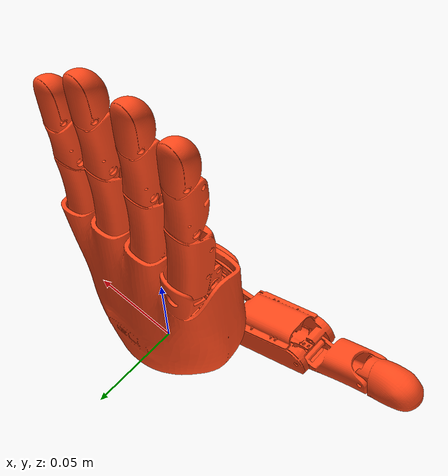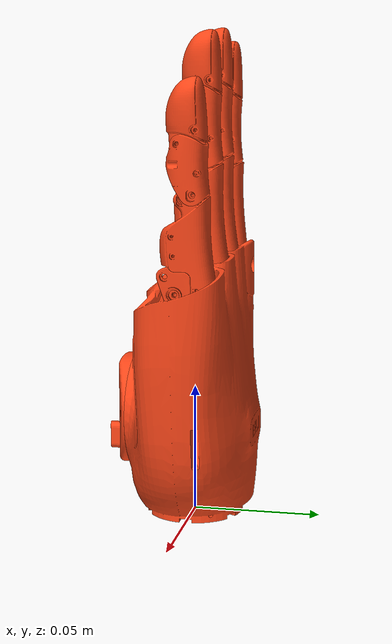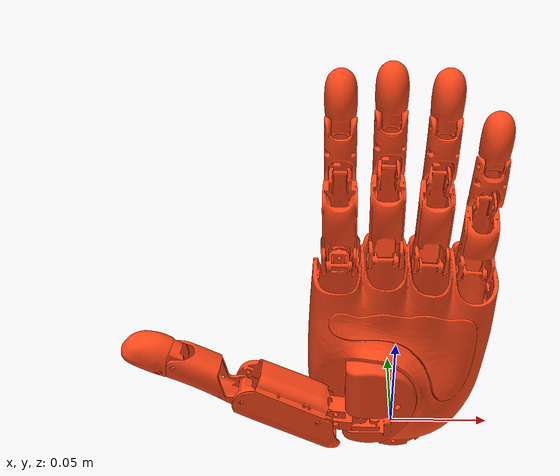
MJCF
<mujoco model="ghand5-left">
  <default>
    <default class="robot">
      <default class="motor">
        <joint />
        <motor />
      </default>
      <default class="visual">
        <geom material="visualgeom" contype="0" conaffinity="0" group="2" />
      </default>
      <default class="collision">
        <geom material="collision_material" condim="3" contype="0" conaffinity="1" priority="1" group="1" solref="0.005 1" solimp="0.99 0.999 1e-05" friction="1 0.01 0.01" />
      </default>
    </default>
  </default>

  <compiler angle="radian" />

  <asset>
    <material name="urdf_material" rgba="0.792156862745098 0.819607843137255 0.933333333333333 1" />
    <material name="default_material" rgba="0.7 0.7 0.7 1" />
    <material name="collision_material" rgba="1.0 0.28 0.1 0.9" />
    <mesh name="base_link.STL" file="ghand5_system/meshes/hands/visual/left/base_link.STL" />
    <mesh name="LF_MCP_link.STL" file="ghand5_system/meshes/hands/visual/left/LF_MCP_link.STL" />
    <mesh name="LF_PIP_link.STL" file="ghand5_system/meshes/hands/visual/left/LF_PIP_link.STL" />
    <mesh name="LF_DIP_link.STL" file="ghand5_system/meshes/hands/visual/left/LF_DIP_link.STL" />
    <mesh name="RF_MCP_link.STL" file="ghand5_system/meshes/hands/visual/left/RF_MCP_link.STL" />
    <mesh name="RF_PIP_link.STL" file="ghand5_system/meshes/hands/visual/left/RF_PIP_link.STL" />
    <mesh name="RF_DIP_link.STL" file="ghand5_system/meshes/hands/visual/left/RF_DIP_link.STL" />
    <mesh name="MF_MCP_link.STL" file="ghand5_system/meshes/hands/visual/left/MF_MCP_link.STL" />
    <mesh name="MF_PIP_link.STL" file="ghand5_system/meshes/hands/visual/left/MF_PIP_link.STL" />
    <mesh name="MF_DIP_link.STL" file="ghand5_system/meshes/hands/visual/left/MF_DIP_link.STL" />
    <mesh name="FF_MCP_AA_link.STL" file="ghand5_system/meshes/hands/visual/left/FF_MCP_AA_link.STL" />
    <mesh name="FF_MCP_link.STL" file="ghand5_system/meshes/hands/visual/left/FF_MCP_link.STL" />
    <mesh name="FF_PIP_link.STL" file="ghand5_system/meshes/hands/visual/left/FF_PIP_link.STL" />
    <mesh name="FF_DIP_link.STL" file="ghand5_system/meshes/hands/visual/left/FF_DIP_link.STL" />
    <mesh name="Thumb_TMC_PS_link.STL" file="ghand5_system/meshes/hands/visual/left/Thumb_TMC_PS_link.STL" />
    <mesh name="Thumb_TMC_AA_link.STL" file="ghand5_system/meshes/hands/visual/left/Thumb_TMC_AA_link.STL" />
    <mesh name="Thumb_TMC_FE_link.STL" file="ghand5_system/meshes/hands/visual/left/Thumb_TMC_FE_link.STL" />
    <mesh name="Thumb_MCP_link.STL" file="ghand5_system/meshes/hands/visual/left/Thumb_MCP_link.STL" />
    <mesh name="Thumb_IP_link.STL" file="ghand5_system/meshes/hands/visual/left/Thumb_IP_link.STL" />
  </asset>

  <worldbody>
    <body name="base_link" pos="0.00000000 0.00000000 0.00000000" quat="1 0 0 0" childclass="robot">
      <freejoint name="floating_base" />
      <geom name="base_link_collision" pos="0 0 0" quat="1.0 0.0 0.0 0.0" type="mesh" mesh="base_link.STL" class="collision" />
      <geom name="base_link_visual" pos="0 0 0" quat="1.0 0.0 0.0 0.0" material="urdf_material" type="mesh" mesh="base_link.STL" class="visual" />
      <body name="LF_MCP_link" pos="0.0341852210660914 0.00105270446463312 0.0926707802401366" quat="0.6821582688208421 -4.763367598241154e-14 0.7312045515991757 5.122264457649408e-14">
        <joint name="LF_MCP" type="hinge" ref="0.0" class="motor" range="0 1.5707963267949" axis="0 0 1" />
        <inertial pos="-0.0148711772185361 0.00503210080095334 -3.90397370621486E-05" quat="1.0 0.0 0.0 0.0" mass="0.0264425466158207" diaginertia="1.12664170958369e-06 3.74474011460812e-06 3.38696740766995e-06" />
        <geom name="LF_MCP_link_collision" pos="0 0 0" quat="1.0 0.0 0.0 0.0" type="mesh" mesh="LF_MCP_link.STL" class="collision" />
        <geom name="LF_MCP_link_visual" pos="0 0 0" quat="1.0 0.0 0.0 0.0" material="urdf_material" type="mesh" mesh="LF_MCP_link.STL" class="visual" />
        <body name="LF_PIP_link" pos="-0.0358288970800678 0.006967083967316 0" quat="1.0 0.0 0.0 0.0">
          <joint name="LF_PIP" type="hinge" ref="0.0" class="motor" range="0 1.2915436464758" axis="0 0 1" />
          <inertial pos="-0.00970679039691405 -0.0014891837266436 -3.24879588827764E-05" quat="1.0 0.0 0.0 0.0" mass="0.0106101968315524" diaginertia="3.90064215119568e-07 7.0495323844342e-07 4.68172630853214e-07" />
          <geom name="LF_PIP_link_collision" pos="0 0 0" quat="1.0 0.0 0.0 0.0" type="mesh" mesh="LF_PIP_link.STL" class="collision" />
          <geom name="LF_PIP_link_visual" pos="0 0 0" quat="1.0 0.0 0.0 0.0" material="urdf_material" type="mesh" mesh="LF_PIP_link.STL" class="visual" />
          <body name="LF_DIP_link" pos="-0.0179228018003556 -0.00526164609730276 0" quat="1.0 0.0 0.0 0.0">
            <joint name="LF_DIP" type="hinge" ref="0.0" class="motor" range="0 1.5707963267949" axis="0 0 1" />
            <inertial pos="-0.0108226899547076 0.00329547162175338 -3.0159199589791E-07" quat="1.0 0.0 0.0 0.0" mass="0.0178569970402571" diaginertia="3.42130350461428e-07 6.78616961664815e-07 5.82556664767968e-07" />
            <geom name="LF_DIP_link_collision" pos="0 0 0" quat="1.0 0.0 0.0 0.0" type="mesh" mesh="LF_DIP_link.STL" class="collision" />
            <geom name="LF_DIP_link_visual" pos="0 0 0" quat="1.0 0.0 0.0 0.0" material="urdf_material" type="mesh" mesh="LF_DIP_link.STL" class="visual" />
          </body>
        </body>
      </body>
      <body name="RF_MCP_link" pos="0.0135355512286308 0.00105270446463024 0.0963960798331156" quat="0.6940987862180593 -4.8506430271714504e-14 0.7198797642458196 5.0392956940504935e-14">
        <joint name="RF_MCP" type="hinge" ref="0.0" class="motor" range="0 1.5707963267949" axis="0 0 1" />
        <inertial pos="-0.0200176605094789 0.00499796509523004 -1.85030901490336E-05" quat="1.0 0.0 0.0 0.0" mass="0.0343134760305779" diaginertia="1.44671354097826e-06 5.95559433593644e-06 5.50743031595373e-06" />
        <geom name="RF_MCP_link_collision" pos="0 0 0" quat="1.0 0.0 0.0 0.0" type="mesh" mesh="RF_MCP_link.STL" class="collision" />
        <geom name="RF_MCP_link_visual" pos="0 0 0" quat="1.0 0.0 0.0 0.0" material="urdf_material" type="mesh" mesh="RF_MCP_link.STL" class="visual" />
        <body name="RF_PIP_link" pos="-0.0444122103156598 0.00702322514126899 0" quat="1.0 0.0 0.0 0.0">
          <joint name="RF_PIP" type="hinge" ref="0.0" class="motor" range="0 1.5707963267949" axis="0 0 1" />
          <inertial pos="-0.0129148260618749 -0.00162996682647051 -2.88218112195031E-05" quat="1.0 0.0 0.0 0.0" mass="0.0144399124372973" diaginertia="4.79018492399723e-07 1.15968816988007e-06 9.20877804802019e-07" />
          <geom name="RF_PIP_link_collision" pos="0 0 0" quat="1.0 0.0 0.0 0.0" type="mesh" mesh="RF_PIP_link.STL" class="collision" />
          <geom name="RF_PIP_link_visual" pos="0 0 0" quat="1.0 0.0 0.0 0.0" material="urdf_material" type="mesh" mesh="RF_PIP_link.STL" class="visual" />
          <body name="RF_DIP_link" pos="-0.0229863014808497 -0.00506400073075268 0" quat="1.0 0.0 0.0 0.0">
            <joint name="RF_DIP" type="hinge" ref="0.0" class="motor" range="0 1.5707963267949" axis="0 0 1" />
            <inertial pos="-0.0109604550651497 0.00395377644286432 -1.63905277614229E-07" quat="1.0 0.0 0.0 0.0" mass="0.0185888776633967" diaginertia="3.65194865942127e-07 7.27883339734115e-07 6.40952646597465e-07" />
            <geom name="RF_DIP_link_collision" pos="0 0 0" quat="1.0 0.0 0.0 0.0" type="mesh" mesh="RF_DIP_link.STL" class="collision" />
            <geom name="RF_DIP_link_visual" pos="0 0 0" quat="1.0 0.0 0.0 0.0" material="urdf_material" type="mesh" mesh="RF_DIP_link.STL" class="visual" />
          </body>
        </body>
      </body>
      <body name="MF_MCP_link" pos="-0.00722798025578278 0.00105270446462735 0.0991316467107428" quat="0.7071067811865464 0.0 0.7071067811865488 0.0">
        <joint name="MF_MCP" type="hinge" ref="0.0" class="motor" range="0 1.5707963267949" axis="0 0 1" />
        <inertial pos="-0.0200176276093762 0.0049979899643572 -1.85265135896765E-05" quat="1.0 0.0 0.0 0.0" mass="0.0343135939214946" diaginertia="1.44671866504892e-06 5.95561227994289e-06 5.50744598683865e-06" />
        <geom name="MF_MCP_link_collision" pos="0 0 0" quat="1.0 0.0 0.0 0.0" type="mesh" mesh="MF_MCP_link.STL" class="collision" />
        <geom name="MF_MCP_link_visual" pos="0 0 0" quat="1.0 0.0 0.0 0.0" material="urdf_material" type="mesh" mesh="MF_MCP_link.STL" class="visual" />
        <body name="MF_PIP_link" pos="-0.0444122103156598 0.00702322514126876 0" quat="1.0 0.0 0.0 0.0">
          <joint name="MF_PIP" type="hinge" ref="0.0" class="motor" range="0 1.5707963267949" axis="0 0 1" />
          <inertial pos="-0.0129148215464311 -0.00162996448948438 -2.88203621944295E-05" quat="1.0 0.0 0.0 0.0" mass="0.0144399273945641" diaginertia="4.79018455766445e-07 1.15968800074267e-06 9.20877447557288e-07" />
          <geom name="MF_PIP_link_collision" pos="0 0 0" quat="1.0 0.0 0.0 0.0" type="mesh" mesh="MF_PIP_link.STL" class="collision" />
          <geom name="MF_PIP_link_visual" pos="0 0 0" quat="1.0 0.0 0.0 0.0" material="urdf_material" type="mesh" mesh="MF_PIP_link.STL" class="visual" />
          <body name="MF_DIP_link" pos="-0.0229863014808496 -0.00506400073075275 0" quat="1.0 0.0 0.0 0.0">
            <joint name="MF_DIP" type="hinge" ref="0.0" class="motor" range="0 1.5707963267949" axis="0 0 1" />
            <inertial pos="-0.0109604654149592 0.00395377978875927 -1.46217913525246E-07" quat="1.0 0.0 0.0 0.0" mass="0.0185887777045742" diaginertia="3.65193959221198e-07 7.27881263897243e-07 6.40953734705396e-07" />
            <geom name="MF_DIP_link_collision" pos="0 0 0" quat="1.0 0.0 0.0 0.0" type="mesh" mesh="MF_DIP_link.STL" class="collision" />
            <geom name="MF_DIP_link_visual" pos="0 0 0" quat="1.0 0.0 0.0 0.0" material="urdf_material" type="mesh" mesh="MF_DIP_link.STL" class="visual" />
          </body>
        </body>
      </body>
      <body name="FF_MCP_AA_link" pos="-0.0285659529216511 0.0135527163734262 0.095927444876198" quat="0.7071067811865464 0.7071067811865488 0.0 0.0">
        <joint name="FF_MCP_AA" type="hinge" ref="0.0" class="motor" range="-0.174532925199433 0.174532925199433" axis="0 0 1" />
        <inertial pos="1.64802341051651E-07 -0.000374610587386776 0.00649307156393637" quat="1.0 0.0 0.0 0.0" mass="0.0025883837088615" diaginertia="3.84640393651395e-08 5.98300763631494e-08 3.65467558498812e-08" />
        <geom name="FF_MCP_AA_link_collision" pos="0 0 0" quat="1.0 0.0 0.0 0.0" type="mesh" mesh="FF_MCP_AA_link.STL" class="collision" />
        <geom name="FF_MCP_AA_link_visual" pos="0 0 0" quat="1.0 0.0 0.0 0.0" material="urdf_material" type="mesh" mesh="FF_MCP_AA_link.STL" class="visual" />
        <body name="FF_MCP_link" pos="0 0 0.0125" quat="0.49999999999999833 -0.5000000000000001 0.5000000000000018 -0.5000000000000001">
          <joint name="FF_MCP" type="hinge" ref="0.0" class="motor" range="0 1.5707963267949" axis="0 0 1" />
          <inertial pos="-0.0203261719483402 0.00517157125397612 -1.51338923120997E-05" quat="1.0 0.0 0.0 0.0" mass="0.0388434494003892" diaginertia="1.71073787692032e-06 6.34042618565216e-06 5.91657811452182e-06" />
          <geom name="FF_MCP_link_collision" pos="0 0 0" quat="1.0 0.0 0.0 0.0" type="mesh" mesh="FF_MCP_link.STL" class="collision" />
          <geom name="FF_MCP_link_visual" pos="0 0 0" quat="1.0 0.0 0.0 0.0" material="urdf_material" type="mesh" mesh="FF_MCP_link.STL" class="visual" />
          <body name="FF_PIP_link" pos="-0.0444028148756133 0.00707732213426312 0" quat="1.0 0.0 0.0 0.0">
            <joint name="FF_PIP" type="hinge" ref="0.0" class="motor" range="0 1.39626340159546" axis="0 0 1" />
            <inertial pos="-0.0129211042936213 -0.0015794747331721 -2.88222144197853E-05" quat="1.0 0.0 0.0 0.0" mass="0.0144399060605386" diaginertia="4.78482170758205e-07 1.16022348477376e-06 9.20877322423949e-07" />
            <geom name="FF_PIP_link_collision" pos="0 0 0" quat="1.0 0.0 0.0 0.0" type="mesh" mesh="FF_PIP_link.STL" class="collision" />
            <geom name="FF_PIP_link_visual" pos="0 0 0" quat="1.0 0.0 0.0 0.0" material="urdf_material" type="mesh" mesh="FF_PIP_link.STL" class="visual" />
            <body name="FF_DIP_link" pos="-0.0230058985654291 -0.00497411578203518 0" quat="1.0 0.0 0.0 0.0">
              <joint name="FF_DIP" type="hinge" ref="0.0" class="motor" range="0 1.5707963267949" axis="0 0 1" />
              <inertial pos="-0.0109378083481901 0.00401605154274098 -1.52906606647185E-07" quat="1.0 0.0 0.0 0.0" mass="0.0185888083519497" diaginertia="3.6627730405321e-07 7.26799727463325e-07 6.40955211912844e-07" />
              <geom name="FF_DIP_link_collision" pos="0 0 0" quat="1.0 0.0 0.0 0.0" type="mesh" mesh="FF_DIP_link.STL" class="collision" />
              <geom name="FF_DIP_link_visual" pos="0 0 0" quat="1.0 0.0 0.0 0.0" material="urdf_material" type="mesh" mesh="FF_DIP_link.STL" class="visual" />
            </body>
          </body>
        </body>
      </body>
      <body name="Thumb_TMC_PS_link" pos="-0.0134918109575169 -0.0165472836265707 0.0372" quat="5.060027497242925e-14 -5.060027497242942e-14 0.7071067811865488 -0.7071067811865464">
        <joint name="Thumb_TMC_PS" type="hinge" ref="0.0" class="motor" range="-0.174532925199433 1.0471975511966" axis="0 0 -1" />
        <inertial pos="-0.00286579189438619 8.16719878157721E-05 0.00727706099128318" quat="1.0 0.0 0.0 0.0" mass="0.0504417355174311" diaginertia="1.02739038545826e-05 5.32993653042683e-06 1.34948653995552e-05" />
        <geom name="Thumb_TMC_PS_link_collision" pos="0 0 0" quat="1.0 0.0 0.0 0.0" type="mesh" mesh="Thumb_TMC_PS_link.STL" class="collision" />
        <geom name="Thumb_TMC_PS_link_visual" pos="0 0 0" quat="1.0 0.0 0.0 0.0" material="urdf_material" type="mesh" mesh="Thumb_TMC_PS_link.STL" class="visual" />
        <body name="Thumb_TMC_AA_link" pos="0.00380943610202206 0.0075993518562691 0.0089000000000029" quat="0.4998008786730156 0.49980087867301215 -0.5001990420599434 0.5001990420599401">
          <joint name="Thumb_TMC_AA" type="hinge" ref="0.0" class="motor" range="0.349065850398866 1.5707963267949" axis="0 0 1" />
          <inertial pos="-0.000429258163308389 -0.00819858219889382 -0.0018889705084159" quat="1.0 0.0 0.0 0.0" mass="0.00783292428265176" diaginertia="2.20337014525965e-07 1.92376202737048e-07 3.71557089991939e-07" />
          <geom name="Thumb_TMC_AA_link_collision" pos="0 0 0" quat="1.0 0.0 0.0 0.0" type="mesh" mesh="Thumb_TMC_AA_link.STL" class="collision" />
          <geom name="Thumb_TMC_AA_link_visual" pos="0 0 0" quat="1.0 0.0 0.0 0.0" material="urdf_material" type="mesh" mesh="Thumb_TMC_AA_link.STL" class="visual" />
          <body name="Thumb_TMC_FE_link" pos="0 -0.0169708042062207 -0.000135302815330952" quat="0.7071067811865464 0.0 -0.7071067811865488 0.0">
            <joint name="Thumb_TMC_FE" type="hinge" ref="0.0" class="motor" range="0 0.872664625997165" axis="0 0 1" />
            <inertial pos="0.00545675661444068 -0.0189127124132279 -4.16794533686787E-05" quat="1.0 0.0 0.0 0.0" mass="0.0655983505307365" diaginertia="1.48168784761073e-05 8.65854342269974e-06 1.33110336851764e-05" />
            <geom name="Thumb_TMC_FE_link_collision" pos="0 0 0" quat="1.0 0.0 0.0 0.0" type="mesh" mesh="Thumb_TMC_FE_link.STL" class="collision" />
            <geom name="Thumb_TMC_FE_link_visual" pos="0 0 0" quat="1.0 0.0 0.0 0.0" material="urdf_material" type="mesh" mesh="Thumb_TMC_FE_link.STL" class="visual" />
            <body name="Thumb_MCP_link" pos="0.0124047359661016 -0.040165439442527 0" quat="1.0 0.0 0.0 0.0">
              <joint name="Thumb_MCP" type="hinge" ref="0.0" class="motor" range="0 1.15191730631626" axis="0 0 1" />
              <inertial pos="0.0102724056633448 -0.0164716138694615 -1.54047012742922E-05" quat="1.0 0.0 0.0 0.0" mass="0.0211695308316589" diaginertia="2.32359665444926e-06 1.99699379572578e-06 2.72196769347229e-06" />
              <geom name="Thumb_MCP_link_collision" pos="0 0 0" quat="1.0 0.0 0.0 0.0" type="mesh" mesh="Thumb_MCP_link.STL" class="collision" />
              <geom name="Thumb_MCP_link_visual" pos="0 0 0" quat="1.0 0.0 0.0 0.0" material="urdf_material" type="mesh" mesh="Thumb_MCP_link.STL" class="visual" />
              <body name="Thumb_IP_link" pos="0.0199996280796681 -0.029209157411227 0" quat="1.0 0.0 0.0 0.0">
                <joint name="Thumb_IP" type="hinge" ref="0.0" class="motor" range="0 1.5707963267949" axis="0 0 1" />
                <inertial pos="0.0029808080560078 -0.0105432341704655 4.29903138707936E-05" quat="1.0 0.0 0.0 0.0" mass="0.0339878828901569" diaginertia="1.92117349576886e-06 9.93903641320791e-07 1.61463123626968e-06" />
                <geom name="Thumb_IP_link_collision" pos="0 0 0" quat="1.0 0.0 0.0 0.0" type="mesh" mesh="Thumb_IP_link.STL" class="collision" />
                <geom name="Thumb_IP_link_visual" pos="0 0 0" quat="1.0 0.0 0.0 0.0" material="urdf_material" type="mesh" mesh="Thumb_IP_link.STL" class="visual" />
              </body>
            </body>
          </body>
        </body>
      </body>
      <site name="base_link_site" pos="0 0 0" quat="1 0 0 0" />
      <camera name="front_camera" mode="track" fovy="90.0" quat="4.329637285359678e-17 4.329637285359677e-17 0.7071067811865475 0.7071067811865476" pos="0.0 2.0 0.5" />
      <camera name="side_camera" mode="track" fovy="90.0" quat="-0.5 -0.4999999999999999 0.5 0.5000000000000001" pos="-2.0 0.0 0.5" />
    </body>
  </worldbody>

  <actuator>
    <motor name="LF_MCP_ctrl" joint="LF_MCP" class="motor" />
    <motor name="LF_PIP_ctrl" joint="LF_PIP" class="motor" />
    <motor name="LF_DIP_ctrl" joint="LF_DIP" class="motor" />
    <motor name="RF_MCP_ctrl" joint="RF_MCP" class="motor" />
    <motor name="RF_PIP_ctrl" joint="RF_PIP" class="motor" />
    <motor name="RF_DIP_ctrl" joint="RF_DIP" class="motor" />
    <motor name="MF_MCP_ctrl" joint="MF_MCP" class="motor" />
    <motor name="MF_PIP_ctrl" joint="MF_PIP" class="motor" />
    <motor name="MF_DIP_ctrl" joint="MF_DIP" class="motor" />
    <motor name="FF_MCP_AA_ctrl" joint="FF_MCP_AA" class="motor" />
    <motor name="FF_MCP_ctrl" joint="FF_MCP" class="motor" />
    <motor name="FF_PIP_ctrl" joint="FF_PIP" class="motor" />
    <motor name="FF_DIP_ctrl" joint="FF_DIP" class="motor" />
    <motor name="Thumb_TMC_PS_ctrl" joint="Thumb_TMC_PS" class="motor" />
    <motor name="Thumb_TMC_AA_ctrl" joint="Thumb_TMC_AA" class="motor" />
    <motor name="Thumb_TMC_FE_ctrl" joint="Thumb_TMC_FE" class="motor" />
    <motor name="Thumb_MCP_ctrl" joint="Thumb_MCP" class="motor" />
    <motor name="Thumb_IP_ctrl" joint="Thumb_IP" class="motor" />
  </actuator>

  <contact>
    <exclude body1="base_link" body2="LF_MCP_link" />
    <exclude body1="LF_MCP_link" body2="LF_PIP_link" />
    <exclude body1="LF_PIP_link" body2="LF_DIP_link" />
    <exclude body1="base_link" body2="RF_MCP_link" />
    <exclude body1="RF_MCP_link" body2="RF_PIP_link" />
    <exclude body1="RF_PIP_link" body2="RF_DIP_link" />
    <exclude body1="base_link" body2="MF_MCP_link" />
    <exclude body1="MF_MCP_link" body2="MF_PIP_link" />
    <exclude body1="MF_PIP_link" body2="MF_DIP_link" />
    <exclude body1="base_link" body2="FF_MCP_AA_link" />
    <exclude body1="FF_MCP_AA_link" body2="FF_MCP_link" />
    <exclude body1="FF_MCP_link" body2="FF_PIP_link" />
    <exclude body1="FF_PIP_link" body2="FF_DIP_link" />
    <exclude body1="base_link" body2="Thumb_TMC_PS_link" />
    <exclude body1="Thumb_TMC_PS_link" body2="Thumb_TMC_AA_link" />
    <exclude body1="Thumb_TMC_AA_link" body2="Thumb_TMC_FE_link" />
    <exclude body1="Thumb_TMC_FE_link" body2="Thumb_MCP_link" />
    <exclude body1="Thumb_MCP_link" body2="Thumb_IP_link" />
  </contact>

  <sensor>
    <framepos name="base_link_site_pos" objtype="site" objname="base_link_site" />
    <framequat name="base_link_site_quat" objtype="site" objname="base_link_site" />
    <framelinvel name="base_link_site_linvel" objtype="site" objname="base_link_site" />
    <frameangvel name="base_link_site_angvel" objtype="site" objname="base_link_site" />
    <velocimeter name="base_link_site_vel" site="base_link_site" />
  </sensor>
</mujoco>
